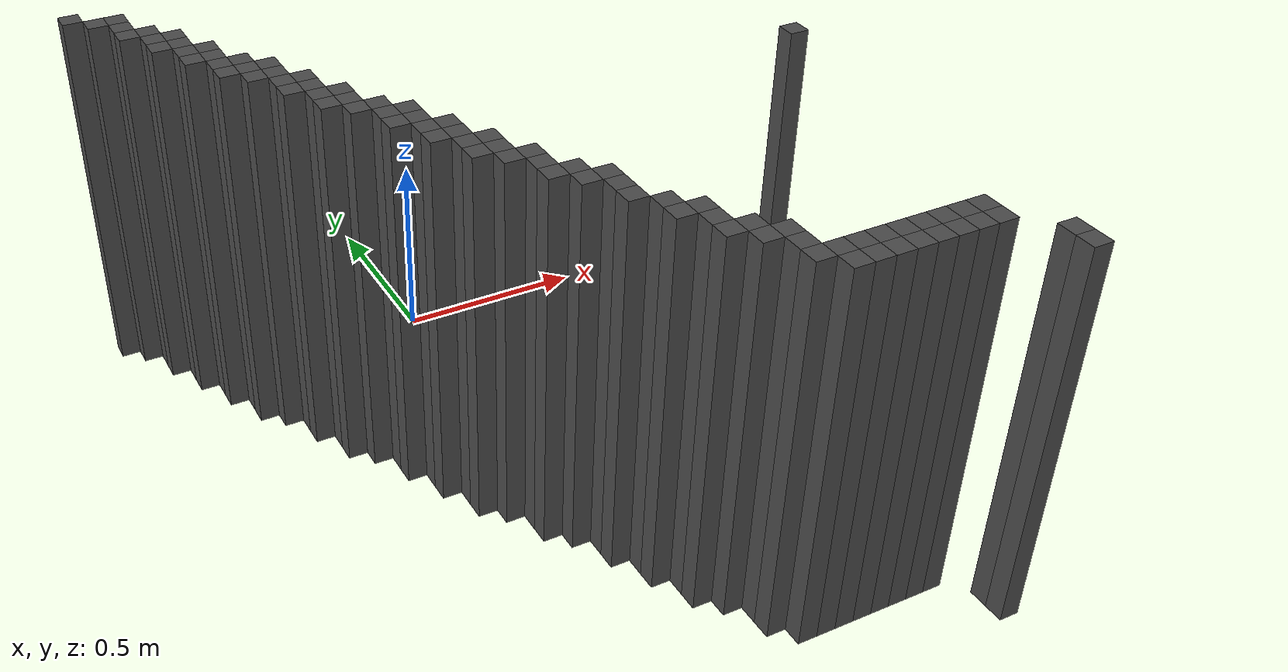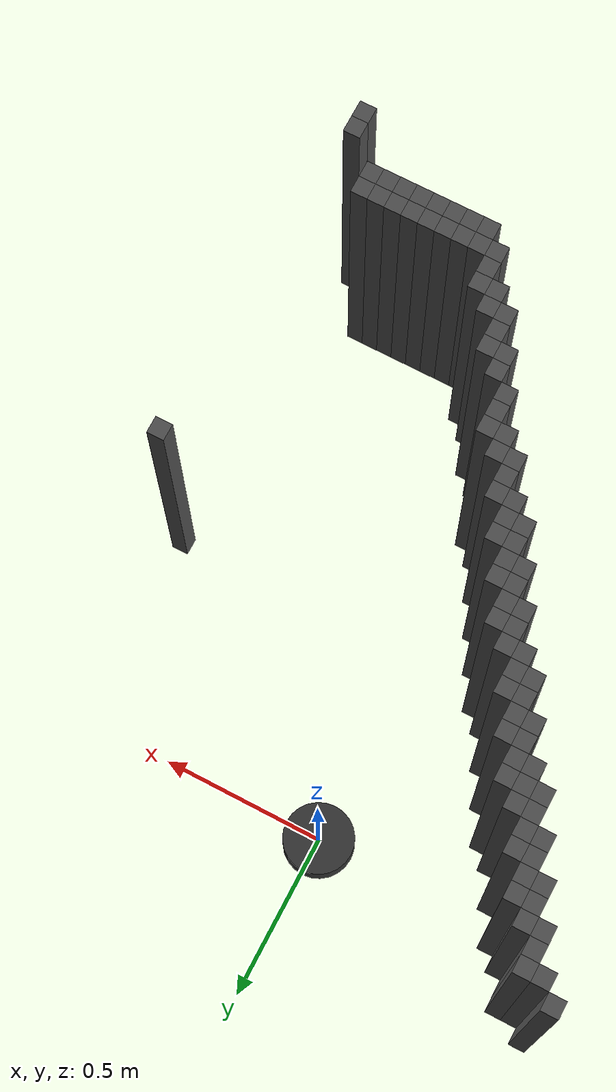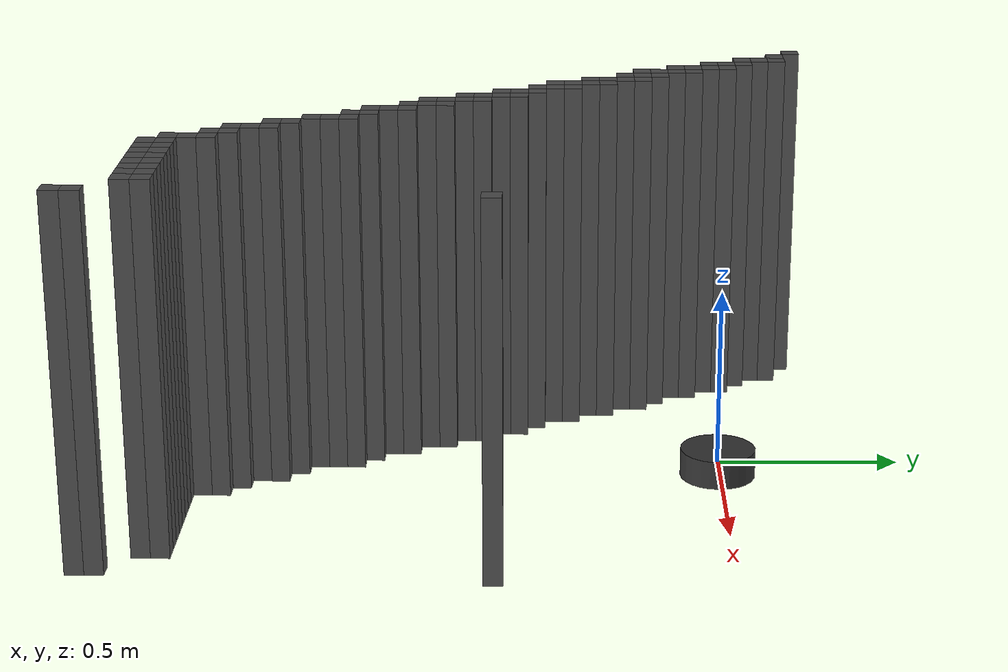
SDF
<sdf version="1.9">
 <world name="house_cleaner">
  <model name="wall_62_8">
   <static>true</static>
   <pose>-0.7700 0.2400 0.5 0 0 0</pose>
   <link name="wall_link">
    <collision name="collision"><geometry><box><size>0.05 0.05 1.0</size></box></geometry></collision>
    <visual name="visual">
     <geometry><box><size>0.05 0.05 1.0</size></box></geometry>
     <material><ambient>0.3 0.3 0.3 1</ambient><diffuse>0.3 0.3 0.3 1</diffuse></material>
    </visual>
   </link>
  </model>
  <model name="wall_63_9">
   <static>true</static>
   <pose>-0.7200 0.1900 0.5 0 0 0</pose>
   <link name="wall_link">
    <collision name="collision"><geometry><box><size>0.05 0.05 1.0</size></box></geometry></collision>
    <visual name="visual">
     <geometry><box><size>0.05 0.05 1.0</size></box></geometry>
     <material><ambient>0.3 0.3 0.3 1</ambient><diffuse>0.3 0.3 0.3 1</diffuse></material>
    </visual>
   </link>
  </model>
  <model name="wall_63_10">
   <static>true</static>
   <pose>-0.6700 0.1900 0.5 0 0 0</pose>
   <link name="wall_link">
    <collision name="collision"><geometry><box><size>0.05 0.05 1.0</size></box></geometry></collision>
    <visual name="visual">
     <geometry><box><size>0.05 0.05 1.0</size></box></geometry>
     <material><ambient>0.3 0.3 0.3 1</ambient><diffuse>0.3 0.3 0.3 1</diffuse></material>
    </visual>
   </link>
  </model>
  <model name="wall_64_10">
   <static>true</static>
   <pose>-0.6700 0.1400 0.5 0 0 0</pose>
   <link name="wall_link">
    <collision name="collision"><geometry><box><size>0.05 0.05 1.0</size></box></geometry></collision>
    <visual name="visual">
     <geometry><box><size>0.05 0.05 1.0</size></box></geometry>
     <material><ambient>0.3 0.3 0.3 1</ambient><diffuse>0.3 0.3 0.3 1</diffuse></material>
    </visual>
   </link>
  </model>
  <model name="wall_65_10">
   <static>true</static>
   <pose>-0.6700 0.0900 0.5 0 0 0</pose>
   <link name="wall_link">
    <collision name="collision"><geometry><box><size>0.05 0.05 1.0</size></box></geometry></collision>
    <visual name="visual">
     <geometry><box><size>0.05 0.05 1.0</size></box></geometry>
     <material><ambient>0.3 0.3 0.3 1</ambient><diffuse>0.3 0.3 0.3 1</diffuse></material>
    </visual>
   </link>
  </model>
  <model name="wall_65_11">
   <static>true</static>
   <pose>-0.6200 0.0900 0.5 0 0 0</pose>
   <link name="wall_link">
    <collision name="collision"><geometry><box><size>0.05 0.05 1.0</size></box></geometry></collision>
    <visual name="visual">
     <geometry><box><size>0.05 0.05 1.0</size></box></geometry>
     <material><ambient>0.3 0.3 0.3 1</ambient><diffuse>0.3 0.3 0.3 1</diffuse></material>
    </visual>
   </link>
  </model>
  <model name="wall_66_11">
   <static>true</static>
   <pose>-0.6200 0.0400 0.5 0 0 0</pose>
   <link name="wall_link">
    <collision name="collision"><geometry><box><size>0.05 0.05 1.0</size></box></geometry></collision>
    <visual name="visual">
     <geometry><box><size>0.05 0.05 1.0</size></box></geometry>
     <material><ambient>0.3 0.3 0.3 1</ambient><diffuse>0.3 0.3 0.3 1</diffuse></material>
    </visual>
   </link>
  </model>
  <model name="wall_66_12">
   <static>true</static>
   <pose>-0.5700 0.0400 0.5 0 0 0</pose>
   <link name="wall_link">
    <collision name="collision"><geometry><box><size>0.05 0.05 1.0</size></box></geometry></collision>
    <visual name="visual">
     <geometry><box><size>0.05 0.05 1.0</size></box></geometry>
     <material><ambient>0.3 0.3 0.3 1</ambient><diffuse>0.3 0.3 0.3 1</diffuse></material>
    </visual>
   </link>
  </model>
  <model name="wall_67_11">
   <static>true</static>
   <pose>-0.6200 -0.0100 0.5 0 0 0</pose>
   <link name="wall_link">
    <collision name="collision"><geometry><box><size>0.05 0.05 1.0</size></box></geometry></collision>
    <visual name="visual">
     <geometry><box><size>0.05 0.05 1.0</size></box></geometry>
     <material><ambient>0.3 0.3 0.3 1</ambient><diffuse>0.3 0.3 0.3 1</diffuse></material>
    </visual>
   </link>
  </model>
  <model name="wall_67_12">
   <static>true</static>
   <pose>-0.5700 -0.0100 0.5 0 0 0</pose>
   <link name="wall_link">
    <collision name="collision"><geometry><box><size>0.05 0.05 1.0</size></box></geometry></collision>
    <visual name="visual">
     <geometry><box><size>0.05 0.05 1.0</size></box></geometry>
     <material><ambient>0.3 0.3 0.3 1</ambient><diffuse>0.3 0.3 0.3 1</diffuse></material>
    </visual>
   </link>
  </model>
  <model name="wall_68_12">
   <static>true</static>
   <pose>-0.5700 -0.0600 0.5 0 0 0</pose>
   <link name="wall_link">
    <collision name="collision"><geometry><box><size>0.05 0.05 1.0</size></box></geometry></collision>
    <visual name="visual">
     <geometry><box><size>0.05 0.05 1.0</size></box></geometry>
     <material><ambient>0.3 0.3 0.3 1</ambient><diffuse>0.3 0.3 0.3 1</diffuse></material>
    </visual>
   </link>
  </model>
  <model name="wall_68_13">
   <static>true</static>
   <pose>-0.5200 -0.0600 0.5 0 0 0</pose>
   <link name="wall_link">
    <collision name="collision"><geometry><box><size>0.05 0.05 1.0</size></box></geometry></collision>
    <visual name="visual">
     <geometry><box><size>0.05 0.05 1.0</size></box></geometry>
     <material><ambient>0.3 0.3 0.3 1</ambient><diffuse>0.3 0.3 0.3 1</diffuse></material>
    </visual>
   </link>
  </model>
  <model name="wall_69_12">
   <static>true</static>
   <pose>-0.5700 -0.1100 0.5 0 0 0</pose>
   <link name="wall_link">
    <collision name="collision"><geometry><box><size>0.05 0.05 1.0</size></box></geometry></collision>
    <visual name="visual">
     <geometry><box><size>0.05 0.05 1.0</size></box></geometry>
     <material><ambient>0.3 0.3 0.3 1</ambient><diffuse>0.3 0.3 0.3 1</diffuse></material>
    </visual>
   </link>
  </model>
  <model name="wall_69_13">
   <static>true</static>
   <pose>-0.5200 -0.1100 0.5 0 0 0</pose>
   <link name="wall_link">
    <collision name="collision"><geometry><box><size>0.05 0.05 1.0</size></box></geometry></collision>
    <visual name="visual">
     <geometry><box><size>0.05 0.05 1.0</size></box></geometry>
     <material><ambient>0.3 0.3 0.3 1</ambient><diffuse>0.3 0.3 0.3 1</diffuse></material>
    </visual>
   </link>
  </model>
  <model name="wall_70_13">
   <static>true</static>
   <pose>-0.5200 -0.1600 0.5 0 0 0</pose>
   <link name="wall_link">
    <collision name="collision"><geometry><box><size>0.05 0.05 1.0</size></box></geometry></collision>
    <visual name="visual">
     <geometry><box><size>0.05 0.05 1.0</size></box></geometry>
     <material><ambient>0.3 0.3 0.3 1</ambient><diffuse>0.3 0.3 0.3 1</diffuse></material>
    </visual>
   </link>
  </model>
  <model name="wall_70_14">
   <static>true</static>
   <pose>-0.4700 -0.1600 0.5 0 0 0</pose>
   <link name="wall_link">
    <collision name="collision"><geometry><box><size>0.05 0.05 1.0</size></box></geometry></collision>
    <visual name="visual">
     <geometry><box><size>0.05 0.05 1.0</size></box></geometry>
     <material><ambient>0.3 0.3 0.3 1</ambient><diffuse>0.3 0.3 0.3 1</diffuse></material>
    </visual>
   </link>
  </model>
  <model name="wall_71_13">
   <static>true</static>
   <pose>-0.5200 -0.2100 0.5 0 0 0</pose>
   <link name="wall_link">
    <collision name="collision"><geometry><box><size>0.05 0.05 1.0</size></box></geometry></collision>
    <visual name="visual">
     <geometry><box><size>0.05 0.05 1.0</size></box></geometry>
     <material><ambient>0.3 0.3 0.3 1</ambient><diffuse>0.3 0.3 0.3 1</diffuse></material>
    </visual>
   </link>
  </model>
  <model name="wall_71_14">
   <static>true</static>
   <pose>-0.4700 -0.2100 0.5 0 0 0</pose>
   <link name="wall_link">
    <collision name="collision"><geometry><box><size>0.05 0.05 1.0</size></box></geometry></collision>
    <visual name="visual">
     <geometry><box><size>0.05 0.05 1.0</size></box></geometry>
     <material><ambient>0.3 0.3 0.3 1</ambient><diffuse>0.3 0.3 0.3 1</diffuse></material>
    </visual>
   </link>
  </model>
  <model name="wall_71_15">
   <static>true</static>
   <pose>-0.4200 -0.2100 0.5 0 0 0</pose>
   <link name="wall_link">
    <collision name="collision"><geometry><box><size>0.05 0.05 1.0</size></box></geometry></collision>
    <visual name="visual">
     <geometry><box><size>0.05 0.05 1.0</size></box></geometry>
     <material><ambient>0.3 0.3 0.3 1</ambient><diffuse>0.3 0.3 0.3 1</diffuse></material>
    </visual>
   </link>
  </model>
  <model name="wall_72_14">
   <static>true</static>
   <pose>-0.4700 -0.2600 0.5 0 0 0</pose>
   <link name="wall_link">
    <collision name="collision"><geometry><box><size>0.05 0.05 1.0</size></box></geometry></collision>
    <visual name="visual">
     <geometry><box><size>0.05 0.05 1.0</size></box></geometry>
     <material><ambient>0.3 0.3 0.3 1</ambient><diffuse>0.3 0.3 0.3 1</diffuse></material>
    </visual>
   </link>
  </model>
  <model name="wall_72_15">
   <static>true</static>
   <pose>-0.4200 -0.2600 0.5 0 0 0</pose>
   <link name="wall_link">
    <collision name="collision"><geometry><box><size>0.05 0.05 1.0</size></box></geometry></collision>
    <visual name="visual">
     <geometry><box><size>0.05 0.05 1.0</size></box></geometry>
     <material><ambient>0.3 0.3 0.3 1</ambient><diffuse>0.3 0.3 0.3 1</diffuse></material>
    </visual>
   </link>
  </model>
  <model name="wall_73_15">
   <static>true</static>
   <pose>-0.4200 -0.3100 0.5 0 0 0</pose>
   <link name="wall_link">
    <collision name="collision"><geometry><box><size>0.05 0.05 1.0</size></box></geometry></collision>
    <visual name="visual">
     <geometry><box><size>0.05 0.05 1.0</size></box></geometry>
     <material><ambient>0.3 0.3 0.3 1</ambient><diffuse>0.3 0.3 0.3 1</diffuse></material>
    </visual>
   </link>
  </model>
  <model name="wall_73_16">
   <static>true</static>
   <pose>-0.3700 -0.3100 0.5 0 0 0</pose>
   <link name="wall_link">
    <collision name="collision"><geometry><box><size>0.05 0.05 1.0</size></box></geometry></collision>
    <visual name="visual">
     <geometry><box><size>0.05 0.05 1.0</size></box></geometry>
     <material><ambient>0.3 0.3 0.3 1</ambient><diffuse>0.3 0.3 0.3 1</diffuse></material>
    </visual>
   </link>
  </model>
  <model name="wall_74_15">
   <static>true</static>
   <pose>-0.4200 -0.3600 0.5 0 0 0</pose>
   <link name="wall_link">
    <collision name="collision"><geometry><box><size>0.05 0.05 1.0</size></box></geometry></collision>
    <visual name="visual">
     <geometry><box><size>0.05 0.05 1.0</size></box></geometry>
     <material><ambient>0.3 0.3 0.3 1</ambient><diffuse>0.3 0.3 0.3 1</diffuse></material>
    </visual>
   </link>
  </model>
  <model name="wall_74_16">
   <static>true</static>
   <pose>-0.3700 -0.3600 0.5 0 0 0</pose>
   <link name="wall_link">
    <collision name="collision"><geometry><box><size>0.05 0.05 1.0</size></box></geometry></collision>
    <visual name="visual">
     <geometry><box><size>0.05 0.05 1.0</size></box></geometry>
     <material><ambient>0.3 0.3 0.3 1</ambient><diffuse>0.3 0.3 0.3 1</diffuse></material>
    </visual>
   </link>
  </model>
  <model name="wall_75_16">
   <static>true</static>
   <pose>-0.3700 -0.4100 0.5 0 0 0</pose>
   <link name="wall_link">
    <collision name="collision"><geometry><box><size>0.05 0.05 1.0</size></box></geometry></collision>
    <visual name="visual">
     <geometry><box><size>0.05 0.05 1.0</size></box></geometry>
     <material><ambient>0.3 0.3 0.3 1</ambient><diffuse>0.3 0.3 0.3 1</diffuse></material>
    </visual>
   </link>
  </model>
  <model name="wall_75_17">
   <static>true</static>
   <pose>-0.3200 -0.4100 0.5 0 0 0</pose>
   <link name="wall_link">
    <collision name="collision"><geometry><box><size>0.05 0.05 1.0</size></box></geometry></collision>
    <visual name="visual">
     <geometry><box><size>0.05 0.05 1.0</size></box></geometry>
     <material><ambient>0.3 0.3 0.3 1</ambient><diffuse>0.3 0.3 0.3 1</diffuse></material>
    </visual>
   </link>
  </model>
  <model name="wall_76_16">
   <static>true</static>
   <pose>-0.3700 -0.4600 0.5 0 0 0</pose>
   <link name="wall_link">
    <collision name="collision"><geometry><box><size>0.05 0.05 1.0</size></box></geometry></collision>
    <visual name="visual">
     <geometry><box><size>0.05 0.05 1.0</size></box></geometry>
     <material><ambient>0.3 0.3 0.3 1</ambient><diffuse>0.3 0.3 0.3 1</diffuse></material>
    </visual>
   </link>
  </model>
  <model name="wall_76_17">
   <static>true</static>
   <pose>-0.3200 -0.4600 0.5 0 0 0</pose>
   <link name="wall_link">
    <collision name="collision"><geometry><box><size>0.05 0.05 1.0</size></box></geometry></collision>
    <visual name="visual">
     <geometry><box><size>0.05 0.05 1.0</size></box></geometry>
     <material><ambient>0.3 0.3 0.3 1</ambient><diffuse>0.3 0.3 0.3 1</diffuse></material>
    </visual>
   </link>
  </model>
  <model name="wall_77_17">
   <static>true</static>
   <pose>-0.3200 -0.5100 0.5 0 0 0</pose>
   <link name="wall_link">
    <collision name="collision"><geometry><box><size>0.05 0.05 1.0</size></box></geometry></collision>
    <visual name="visual">
     <geometry><box><size>0.05 0.05 1.0</size></box></geometry>
     <material><ambient>0.3 0.3 0.3 1</ambient><diffuse>0.3 0.3 0.3 1</diffuse></material>
    </visual>
   </link>
  </model>
  <model name="wall_77_18">
   <static>true</static>
   <pose>-0.2700 -0.5100 0.5 0 0 0</pose>
   <link name="wall_link">
    <collision name="collision"><geometry><box><size>0.05 0.05 1.0</size></box></geometry></collision>
    <visual name="visual">
     <geometry><box><size>0.05 0.05 1.0</size></box></geometry>
     <material><ambient>0.3 0.3 0.3 1</ambient><diffuse>0.3 0.3 0.3 1</diffuse></material>
    </visual>
   </link>
  </model>
  <model name="wall_78_18">
   <static>true</static>
   <pose>-0.2700 -0.5600 0.5 0 0 0</pose>
   <link name="wall_link">
    <collision name="collision"><geometry><box><size>0.05 0.05 1.0</size></box></geometry></collision>
    <visual name="visual">
     <geometry><box><size>0.05 0.05 1.0</size></box></geometry>
     <material><ambient>0.3 0.3 0.3 1</ambient><diffuse>0.3 0.3 0.3 1</diffuse></material>
    </visual>
   </link>
  </model>
  <model name="wall_78_19">
   <static>true</static>
   <pose>-0.2200 -0.5600 0.5 0 0 0</pose>
   <link name="wall_link">
    <collision name="collision"><geometry><box><size>0.05 0.05 1.0</size></box></geometry></collision>
    <visual name="visual">
     <geometry><box><size>0.05 0.05 1.0</size></box></geometry>
     <material><ambient>0.3 0.3 0.3 1</ambient><diffuse>0.3 0.3 0.3 1</diffuse></material>
    </visual>
   </link>
  </model>
  <model name="wall_79_18">
   <static>true</static>
   <pose>-0.2700 -0.6100 0.5 0 0 0</pose>
   <link name="wall_link">
    <collision name="collision"><geometry><box><size>0.05 0.05 1.0</size></box></geometry></collision>
    <visual name="visual">
     <geometry><box><size>0.05 0.05 1.0</size></box></geometry>
     <material><ambient>0.3 0.3 0.3 1</ambient><diffuse>0.3 0.3 0.3 1</diffuse></material>
    </visual>
   </link>
  </model>
  <model name="wall_79_19">
   <static>true</static>
   <pose>-0.2200 -0.6100 0.5 0 0 0</pose>
   <link name="wall_link">
    <collision name="collision"><geometry><box><size>0.05 0.05 1.0</size></box></geometry></collision>
    <visual name="visual">
     <geometry><box><size>0.05 0.05 1.0</size></box></geometry>
     <material><ambient>0.3 0.3 0.3 1</ambient><diffuse>0.3 0.3 0.3 1</diffuse></material>
    </visual>
   </link>
  </model>
  <model name="wall_79_39">
   <static>true</static>
   <pose>0.7800 -0.6100 0.5 0 0 0</pose>
   <link name="wall_link">
    <collision name="collision"><geometry><box><size>0.05 0.05 1.0</size></box></geometry></collision>
    <visual name="visual">
     <geometry><box><size>0.05 0.05 1.0</size></box></geometry>
     <material><ambient>0.3 0.3 0.3 1</ambient><diffuse>0.3 0.3 0.3 1</diffuse></material>
    </visual>
   </link>
  </model>
  <model name="wall_80_19">
   <static>true</static>
   <pose>-0.2200 -0.6600 0.5 0 0 0</pose>
   <link name="wall_link">
    <collision name="collision"><geometry><box><size>0.05 0.05 1.0</size></box></geometry></collision>
    <visual name="visual">
     <geometry><box><size>0.05 0.05 1.0</size></box></geometry>
     <material><ambient>0.3 0.3 0.3 1</ambient><diffuse>0.3 0.3 0.3 1</diffuse></material>
    </visual>
   </link>
  </model>
  <model name="wall_80_20">
   <static>true</static>
   <pose>-0.1700 -0.6600 0.5 0 0 0</pose>
   <link name="wall_link">
    <collision name="collision"><geometry><box><size>0.05 0.05 1.0</size></box></geometry></collision>
    <visual name="visual">
     <geometry><box><size>0.05 0.05 1.0</size></box></geometry>
     <material><ambient>0.3 0.3 0.3 1</ambient><diffuse>0.3 0.3 0.3 1</diffuse></material>
    </visual>
   </link>
  </model>
  <model name="wall_81_19">
   <static>true</static>
   <pose>-0.2200 -0.7100 0.5 0 0 0</pose>
   <link name="wall_link">
    <collision name="collision"><geometry><box><size>0.05 0.05 1.0</size></box></geometry></collision>
    <visual name="visual">
     <geometry><box><size>0.05 0.05 1.0</size></box></geometry>
     <material><ambient>0.3 0.3 0.3 1</ambient><diffuse>0.3 0.3 0.3 1</diffuse></material>
    </visual>
   </link>
  </model>
  <model name="wall_81_20">
   <static>true</static>
   <pose>-0.1700 -0.7100 0.5 0 0 0</pose>
   <link name="wall_link">
    <collision name="collision"><geometry><box><size>0.05 0.05 1.0</size></box></geometry></collision>
    <visual name="visual">
     <geometry><box><size>0.05 0.05 1.0</size></box></geometry>
     <material><ambient>0.3 0.3 0.3 1</ambient><diffuse>0.3 0.3 0.3 1</diffuse></material>
    </visual>
   </link>
  </model>
  <model name="wall_82_20">
   <static>true</static>
   <pose>-0.1700 -0.7600 0.5 0 0 0</pose>
   <link name="wall_link">
    <collision name="collision"><geometry><box><size>0.05 0.05 1.0</size></box></geometry></collision>
    <visual name="visual">
     <geometry><box><size>0.05 0.05 1.0</size></box></geometry>
     <material><ambient>0.3 0.3 0.3 1</ambient><diffuse>0.3 0.3 0.3 1</diffuse></material>
    </visual>
   </link>
  </model>
  <model name="wall_82_21">
   <static>true</static>
   <pose>-0.1200 -0.7600 0.5 0 0 0</pose>
   <link name="wall_link">
    <collision name="collision"><geometry><box><size>0.05 0.05 1.0</size></box></geometry></collision>
    <visual name="visual">
     <geometry><box><size>0.05 0.05 1.0</size></box></geometry>
     <material><ambient>0.3 0.3 0.3 1</ambient><diffuse>0.3 0.3 0.3 1</diffuse></material>
    </visual>
   </link>
  </model>
  <model name="wall_83_20">
   <static>true</static>
   <pose>-0.1700 -0.8100 0.5 0 0 0</pose>
   <link name="wall_link">
    <collision name="collision"><geometry><box><size>0.05 0.05 1.0</size></box></geometry></collision>
    <visual name="visual">
     <geometry><box><size>0.05 0.05 1.0</size></box></geometry>
     <material><ambient>0.3 0.3 0.3 1</ambient><diffuse>0.3 0.3 0.3 1</diffuse></material>
    </visual>
   </link>
  </model>
  <model name="wall_83_21">
   <static>true</static>
   <pose>-0.1200 -0.8100 0.5 0 0 0</pose>
   <link name="wall_link">
    <collision name="collision"><geometry><box><size>0.05 0.05 1.0</size></box></geometry></collision>
    <visual name="visual">
     <geometry><box><size>0.05 0.05 1.0</size></box></geometry>
     <material><ambient>0.3 0.3 0.3 1</ambient><diffuse>0.3 0.3 0.3 1</diffuse></material>
    </visual>
   </link>
  </model>
  <model name="wall_84_21">
   <static>true</static>
   <pose>-0.1200 -0.8600 0.5 0 0 0</pose>
   <link name="wall_link">
    <collision name="collision"><geometry><box><size>0.05 0.05 1.0</size></box></geometry></collision>
    <visual name="visual">
     <geometry><box><size>0.05 0.05 1.0</size></box></geometry>
     <material><ambient>0.3 0.3 0.3 1</ambient><diffuse>0.3 0.3 0.3 1</diffuse></material>
    </visual>
   </link>
  </model>
  <model name="wall_84_22">
   <static>true</static>
   <pose>-0.0700 -0.8600 0.5 0 0 0</pose>
   <link name="wall_link">
    <collision name="collision"><geometry><box><size>0.05 0.05 1.0</size></box></geometry></collision>
    <visual name="visual">
     <geometry><box><size>0.05 0.05 1.0</size></box></geometry>
     <material><ambient>0.3 0.3 0.3 1</ambient><diffuse>0.3 0.3 0.3 1</diffuse></material>
    </visual>
   </link>
  </model>
  <model name="wall_85_22">
   <static>true</static>
   <pose>-0.0700 -0.9100 0.5 0 0 0</pose>
   <link name="wall_link">
    <collision name="collision"><geometry><box><size>0.05 0.05 1.0</size></box></geometry></collision>
    <visual name="visual">
     <geometry><box><size>0.05 0.05 1.0</size></box></geometry>
     <material><ambient>0.3 0.3 0.3 1</ambient><diffuse>0.3 0.3 0.3 1</diffuse></material>
    </visual>
   </link>
  </model>
  <model name="wall_86_22">
   <static>true</static>
   <pose>-0.0700 -0.9600 0.5 0 0 0</pose>
   <link name="wall_link">
    <collision name="collision"><geometry><box><size>0.05 0.05 1.0</size></box></geometry></collision>
    <visual name="visual">
     <geometry><box><size>0.05 0.05 1.0</size></box></geometry>
     <material><ambient>0.3 0.3 0.3 1</ambient><diffuse>0.3 0.3 0.3 1</diffuse></material>
    </visual>
   </link>
  </model>
  <model name="wall_86_23">
   <static>true</static>
   <pose>-0.0200 -0.9600 0.5 0 0 0</pose>
   <link name="wall_link">
    <collision name="collision"><geometry><box><size>0.05 0.05 1.0</size></box></geometry></collision>
    <visual name="visual">
     <geometry><box><size>0.05 0.05 1.0</size></box></geometry>
     <material><ambient>0.3 0.3 0.3 1</ambient><diffuse>0.3 0.3 0.3 1</diffuse></material>
    </visual>
   </link>
  </model>
  <model name="wall_87_23">
   <static>true</static>
   <pose>-0.0200 -1.0100 0.5 0 0 0</pose>
   <link name="wall_link">
    <collision name="collision"><geometry><box><size>0.05 0.05 1.0</size></box></geometry></collision>
    <visual name="visual">
     <geometry><box><size>0.05 0.05 1.0</size></box></geometry>
     <material><ambient>0.3 0.3 0.3 1</ambient><diffuse>0.3 0.3 0.3 1</diffuse></material>
    </visual>
   </link>
  </model>
  <model name="wall_87_24">
   <static>true</static>
   <pose>0.0300 -1.0100 0.5 0 0 0</pose>
   <link name="wall_link">
    <collision name="collision"><geometry><box><size>0.05 0.05 1.0</size></box></geometry></collision>
    <visual name="visual">
     <geometry><box><size>0.05 0.05 1.0</size></box></geometry>
     <material><ambient>0.3 0.3 0.3 1</ambient><diffuse>0.3 0.3 0.3 1</diffuse></material>
    </visual>
   </link>
  </model>
  <model name="wall_88_24">
   <static>true</static>
   <pose>0.0300 -1.0600 0.5 0 0 0</pose>
   <link name="wall_link">
    <collision name="collision"><geometry><box><size>0.05 0.05 1.0</size></box></geometry></collision>
    <visual name="visual">
     <geometry><box><size>0.05 0.05 1.0</size></box></geometry>
     <material><ambient>0.3 0.3 0.3 1</ambient><diffuse>0.3 0.3 0.3 1</diffuse></material>
    </visual>
   </link>
  </model>
  <model name="wall_89_24">
   <static>true</static>
   <pose>0.0300 -1.1100 0.5 0 0 0</pose>
   <link name="wall_link">
    <collision name="collision"><geometry><box><size>0.05 0.05 1.0</size></box></geometry></collision>
    <visual name="visual">
     <geometry><box><size>0.05 0.05 1.0</size></box></geometry>
     <material><ambient>0.3 0.3 0.3 1</ambient><diffuse>0.3 0.3 0.3 1</diffuse></material>
    </visual>
   </link>
  </model>
  <model name="wall_90_25">
   <static>true</static>
   <pose>0.0800 -1.1600 0.5 0 0 0</pose>
   <link name="wall_link">
    <collision name="collision"><geometry><box><size>0.05 0.05 1.0</size></box></geometry></collision>
    <visual name="visual">
     <geometry><box><size>0.05 0.05 1.0</size></box></geometry>
     <material><ambient>0.3 0.3 0.3 1</ambient><diffuse>0.3 0.3 0.3 1</diffuse></material>
    </visual>
   </link>
  </model>
  <model name="wall_91_25">
   <static>true</static>
   <pose>0.0800 -1.2100 0.5 0 0 0</pose>
   <link name="wall_link">
    <collision name="collision"><geometry><box><size>0.05 0.05 1.0</size></box></geometry></collision>
    <visual name="visual">
     <geometry><box><size>0.05 0.05 1.0</size></box></geometry>
     <material><ambient>0.3 0.3 0.3 1</ambient><diffuse>0.3 0.3 0.3 1</diffuse></material>
    </visual>
   </link>
  </model>
  <model name="wall_91_26">
   <static>true</static>
   <pose>0.1300 -1.2100 0.5 0 0 0</pose>
   <link name="wall_link">
    <collision name="collision"><geometry><box><size>0.05 0.05 1.0</size></box></geometry></collision>
    <visual name="visual">
     <geometry><box><size>0.05 0.05 1.0</size></box></geometry>
     <material><ambient>0.3 0.3 0.3 1</ambient><diffuse>0.3 0.3 0.3 1</diffuse></material>
    </visual>
   </link>
  </model>
  <model name="wall_92_26">
   <static>true</static>
   <pose>0.1300 -1.2600 0.5 0 0 0</pose>
   <link name="wall_link">
    <collision name="collision"><geometry><box><size>0.05 0.05 1.0</size></box></geometry></collision>
    <visual name="visual">
     <geometry><box><size>0.05 0.05 1.0</size></box></geometry>
     <material><ambient>0.3 0.3 0.3 1</ambient><diffuse>0.3 0.3 0.3 1</diffuse></material>
    </visual>
   </link>
  </model>
  <model name="wall_93_26">
   <static>true</static>
   <pose>0.1300 -1.3100 0.5 0 0 0</pose>
   <link name="wall_link">
    <collision name="collision"><geometry><box><size>0.05 0.05 1.0</size></box></geometry></collision>
    <visual name="visual">
     <geometry><box><size>0.05 0.05 1.0</size></box></geometry>
     <material><ambient>0.3 0.3 0.3 1</ambient><diffuse>0.3 0.3 0.3 1</diffuse></material>
    </visual>
   </link>
  </model>
  <model name="wall_93_27">
   <static>true</static>
   <pose>0.1800 -1.3100 0.5 0 0 0</pose>
   <link name="wall_link">
    <collision name="collision"><geometry><box><size>0.05 0.05 1.0</size></box></geometry></collision>
    <visual name="visual">
     <geometry><box><size>0.05 0.05 1.0</size></box></geometry>
     <material><ambient>0.3 0.3 0.3 1</ambient><diffuse>0.3 0.3 0.3 1</diffuse></material>
    </visual>
   </link>
  </model>
  <model name="wall_94_27">
   <static>true</static>
   <pose>0.1800 -1.3600 0.5 0 0 0</pose>
   <link name="wall_link">
    <collision name="collision"><geometry><box><size>0.05 0.05 1.0</size></box></geometry></collision>
    <visual name="visual">
     <geometry><box><size>0.05 0.05 1.0</size></box></geometry>
     <material><ambient>0.3 0.3 0.3 1</ambient><diffuse>0.3 0.3 0.3 1</diffuse></material>
    </visual>
   </link>
  </model>
  <model name="wall_94_28">
   <static>true</static>
   <pose>0.2300 -1.3600 0.5 0 0 0</pose>
   <link name="wall_link">
    <collision name="collision"><geometry><box><size>0.05 0.05 1.0</size></box></geometry></collision>
    <visual name="visual">
     <geometry><box><size>0.05 0.05 1.0</size></box></geometry>
     <material><ambient>0.3 0.3 0.3 1</ambient><diffuse>0.3 0.3 0.3 1</diffuse></material>
    </visual>
   </link>
  </model>
  <model name="wall_95_28">
   <static>true</static>
   <pose>0.2300 -1.4100 0.5 0 0 0</pose>
   <link name="wall_link">
    <collision name="collision"><geometry><box><size>0.05 0.05 1.0</size></box></geometry></collision>
    <visual name="visual">
     <geometry><box><size>0.05 0.05 1.0</size></box></geometry>
     <material><ambient>0.3 0.3 0.3 1</ambient><diffuse>0.3 0.3 0.3 1</diffuse></material>
    </visual>
   </link>
  </model>
  <model name="wall_96_28">
   <static>true</static>
   <pose>0.2300 -1.4600 0.5 0 0 0</pose>
   <link name="wall_link">
    <collision name="collision"><geometry><box><size>0.05 0.05 1.0</size></box></geometry></collision>
    <visual name="visual">
     <geometry><box><size>0.05 0.05 1.0</size></box></geometry>
     <material><ambient>0.3 0.3 0.3 1</ambient><diffuse>0.3 0.3 0.3 1</diffuse></material>
    </visual>
   </link>
  </model>
  <model name="wall_96_29">
   <static>true</static>
   <pose>0.2800 -1.4600 0.5 0 0 0</pose>
   <link name="wall_link">
    <collision name="collision"><geometry><box><size>0.05 0.05 1.0</size></box></geometry></collision>
    <visual name="visual">
     <geometry><box><size>0.05 0.05 1.0</size></box></geometry>
     <material><ambient>0.3 0.3 0.3 1</ambient><diffuse>0.3 0.3 0.3 1</diffuse></material>
    </visual>
   </link>
  </model>
  <model name="wall_96_30">
   <static>true</static>
   <pose>0.3300 -1.4600 0.5 0 0 0</pose>
   <link name="wall_link">
    <collision name="collision"><geometry><box><size>0.05 0.05 1.0</size></box></geometry></collision>
    <visual name="visual">
     <geometry><box><size>0.05 0.05 1.0</size></box></geometry>
     <material><ambient>0.3 0.3 0.3 1</ambient><diffuse>0.3 0.3 0.3 1</diffuse></material>
    </visual>
   </link>
  </model>
  <model name="wall_96_31">
   <static>true</static>
   <pose>0.3800 -1.4600 0.5 0 0 0</pose>
   <link name="wall_link">
    <collision name="collision"><geometry><box><size>0.05 0.05 1.0</size></box></geometry></collision>
    <visual name="visual">
     <geometry><box><size>0.05 0.05 1.0</size></box></geometry>
     <material><ambient>0.3 0.3 0.3 1</ambient><diffuse>0.3 0.3 0.3 1</diffuse></material>
    </visual>
   </link>
  </model>
  <model name="wall_96_32">
   <static>true</static>
   <pose>0.4300 -1.4600 0.5 0 0 0</pose>
   <link name="wall_link">
    <collision name="collision"><geometry><box><size>0.05 0.05 1.0</size></box></geometry></collision>
    <visual name="visual">
     <geometry><box><size>0.05 0.05 1.0</size></box></geometry>
     <material><ambient>0.3 0.3 0.3 1</ambient><diffuse>0.3 0.3 0.3 1</diffuse></material>
    </visual>
   </link>
  </model>
  <model name="wall_96_33">
   <static>true</static>
   <pose>0.4800 -1.4600 0.5 0 0 0</pose>
   <link name="wall_link">
    <collision name="collision"><geometry><box><size>0.05 0.05 1.0</size></box></geometry></collision>
    <visual name="visual">
     <geometry><box><size>0.05 0.05 1.0</size></box></geometry>
     <material><ambient>0.3 0.3 0.3 1</ambient><diffuse>0.3 0.3 0.3 1</diffuse></material>
    </visual>
   </link>
  </model>
  <model name="wall_96_34">
   <static>true</static>
   <pose>0.5300 -1.4600 0.5 0 0 0</pose>
   <link name="wall_link">
    <collision name="collision"><geometry><box><size>0.05 0.05 1.0</size></box></geometry></collision>
    <visual name="visual">
     <geometry><box><size>0.05 0.05 1.0</size></box></geometry>
     <material><ambient>0.3 0.3 0.3 1</ambient><diffuse>0.3 0.3 0.3 1</diffuse></material>
    </visual>
   </link>
  </model>
  <model name="wall_96_35">
   <static>true</static>
   <pose>0.5800 -1.4600 0.5 0 0 0</pose>
   <link name="wall_link">
    <collision name="collision"><geometry><box><size>0.05 0.05 1.0</size></box></geometry></collision>
    <visual name="visual">
     <geometry><box><size>0.05 0.05 1.0</size></box></geometry>
     <material><ambient>0.3 0.3 0.3 1</ambient><diffuse>0.3 0.3 0.3 1</diffuse></material>
    </visual>
   </link>
  </model>
  <model name="wall_96_36">
   <static>true</static>
   <pose>0.6300 -1.4600 0.5 0 0 0</pose>
   <link name="wall_link">
    <collision name="collision"><geometry><box><size>0.05 0.05 1.0</size></box></geometry></collision>
    <visual name="visual">
     <geometry><box><size>0.05 0.05 1.0</size></box></geometry>
     <material><ambient>0.3 0.3 0.3 1</ambient><diffuse>0.3 0.3 0.3 1</diffuse></material>
    </visual>
   </link>
  </model>
  <model name="wall_97_29">
   <static>true</static>
   <pose>0.2800 -1.5100 0.5 0 0 0</pose>
   <link name="wall_link">
    <collision name="collision"><geometry><box><size>0.05 0.05 1.0</size></box></geometry></collision>
    <visual name="visual">
     <geometry><box><size>0.05 0.05 1.0</size></box></geometry>
     <material><ambient>0.3 0.3 0.3 1</ambient><diffuse>0.3 0.3 0.3 1</diffuse></material>
    </visual>
   </link>
  </model>
  <model name="wall_97_30">
   <static>true</static>
   <pose>0.3300 -1.5100 0.5 0 0 0</pose>
   <link name="wall_link">
    <collision name="collision"><geometry><box><size>0.05 0.05 1.0</size></box></geometry></collision>
    <visual name="visual">
     <geometry><box><size>0.05 0.05 1.0</size></box></geometry>
     <material><ambient>0.3 0.3 0.3 1</ambient><diffuse>0.3 0.3 0.3 1</diffuse></material>
    </visual>
   </link>
  </model>
  <model name="wall_97_31">
   <static>true</static>
   <pose>0.3800 -1.5100 0.5 0 0 0</pose>
   <link name="wall_link">
    <collision name="collision"><geometry><box><size>0.05 0.05 1.0</size></box></geometry></collision>
    <visual name="visual">
     <geometry><box><size>0.05 0.05 1.0</size></box></geometry>
     <material><ambient>0.3 0.3 0.3 1</ambient><diffuse>0.3 0.3 0.3 1</diffuse></material>
    </visual>
   </link>
  </model>
  <model name="wall_97_32">
   <static>true</static>
   <pose>0.4300 -1.5100 0.5 0 0 0</pose>
   <link name="wall_link">
    <collision name="collision"><geometry><box><size>0.05 0.05 1.0</size></box></geometry></collision>
    <visual name="visual">
     <geometry><box><size>0.05 0.05 1.0</size></box></geometry>
     <material><ambient>0.3 0.3 0.3 1</ambient><diffuse>0.3 0.3 0.3 1</diffuse></material>
    </visual>
   </link>
  </model>
  <model name="wall_97_33">
   <static>true</static>
   <pose>0.4800 -1.5100 0.5 0 0 0</pose>
   <link name="wall_link">
    <collision name="collision"><geometry><box><size>0.05 0.05 1.0</size></box></geometry></collision>
    <visual name="visual">
     <geometry><box><size>0.05 0.05 1.0</size></box></geometry>
     <material><ambient>0.3 0.3 0.3 1</ambient><diffuse>0.3 0.3 0.3 1</diffuse></material>
    </visual>
   </link>
  </model>
  <model name="wall_97_34">
   <static>true</static>
   <pose>0.5300 -1.5100 0.5 0 0 0</pose>
   <link name="wall_link">
    <collision name="collision"><geometry><box><size>0.05 0.05 1.0</size></box></geometry></collision>
    <visual name="visual">
     <geometry><box><size>0.05 0.05 1.0</size></box></geometry>
     <material><ambient>0.3 0.3 0.3 1</ambient><diffuse>0.3 0.3 0.3 1</diffuse></material>
    </visual>
   </link>
  </model>
  <model name="wall_97_35">
   <static>true</static>
   <pose>0.5800 -1.5100 0.5 0 0 0</pose>
   <link name="wall_link">
    <collision name="collision"><geometry><box><size>0.05 0.05 1.0</size></box></geometry></collision>
    <visual name="visual">
     <geometry><box><size>0.05 0.05 1.0</size></box></geometry>
     <material><ambient>0.3 0.3 0.3 1</ambient><diffuse>0.3 0.3 0.3 1</diffuse></material>
    </visual>
   </link>
  </model>
  <model name="wall_97_36">
   <static>true</static>
   <pose>0.6300 -1.5100 0.5 0 0 0</pose>
   <link name="wall_link">
    <collision name="collision"><geometry><box><size>0.05 0.05 1.0</size></box></geometry></collision>
    <visual name="visual">
     <geometry><box><size>0.05 0.05 1.0</size></box></geometry>
     <material><ambient>0.3 0.3 0.3 1</ambient><diffuse>0.3 0.3 0.3 1</diffuse></material>
    </visual>
   </link>
  </model>
  <model name="wall_99_38">
   <static>true</static>
   <pose>0.7300 -1.6100 0.5 0 0 0</pose>
   <link name="wall_link">
    <collision name="collision"><geometry><box><size>0.05 0.05 1.0</size></box></geometry></collision>
    <visual name="visual">
     <geometry><box><size>0.05 0.05 1.0</size></box></geometry>
     <material><ambient>0.3 0.3 0.3 1</ambient><diffuse>0.3 0.3 0.3 1</diffuse></material>
    </visual>
   </link>
  </model>
  <model name="wall_100_38">
   <static>true</static>
   <pose>0.7300 -1.6600 0.5 0 0 0</pose>
   <link name="wall_link">
    <collision name="collision"><geometry><box><size>0.05 0.05 1.0</size></box></geometry></collision>
    <visual name="visual">
     <geometry><box><size>0.05 0.05 1.0</size></box></geometry>
     <material><ambient>0.3 0.3 0.3 1</ambient><diffuse>0.3 0.3 0.3 1</diffuse></material>
    </visual>
   </link>
  </model>
  <model name="turtlebot3_burger">
   <static>false</static>
   <link name="base_footprint"/>
   <link name="base_link">
    <collision name="collision">
     <geometry><cylinder><radius>0.105</radius><length>0.08</length></cylinder></geometry>
    </collision>
    <visual name="visual">
     <geometry><cylinder><radius>0.105</radius><length>0.08</length></cylinder></geometry>
     <material><ambient>0.2 0.2 0.2 1</ambient></material>
    </visual>
   </link>
   <link name="base_scan">
    <sensor name="hls_lfcd_lds" type="gpu_lidar">
     <always_on>true</always_on>
     <visualize>true</visualize>
     <pose>0.032 0 0.171 0 0 0</pose>
     <update_rate>5</update_rate>
     <topic>scan</topic>
     <gz_frame_id>base_scan</gz_frame_id>
     <lidar>
      <scan>
       <horizontal>
        <samples>360</samples>
        <resolution>1.0</resolution>
        <min_angle>0.0</min_angle>
        <max_angle>6.28</max_angle>
       </horizontal>
      </scan>
      <range><min>0.12</min><max>3.5</max><resolution>0.015</resolution></range>
      <noise><type>gaussian</type><mean>0.0</mean><stddev>0.01</stddev></noise>
     </lidar>
    </sensor>
   </link>
   <joint name="base_footprint_joint" type="fixed">
    <parent>base_footprint</parent>
    <child>base_link</child>
   </joint>
   <joint name="base_link_joint" type="fixed"><parent>base_link</parent><child>base_scan</child></joint>
  </model>
 </world>
</sdf>
